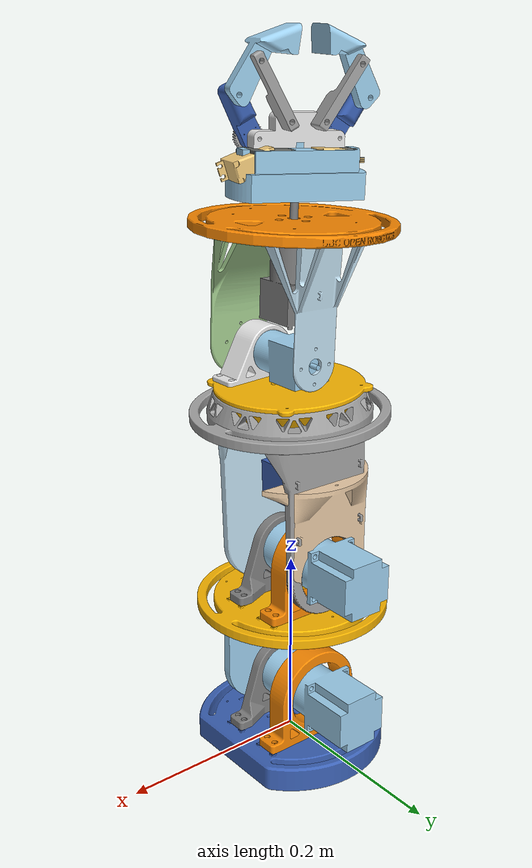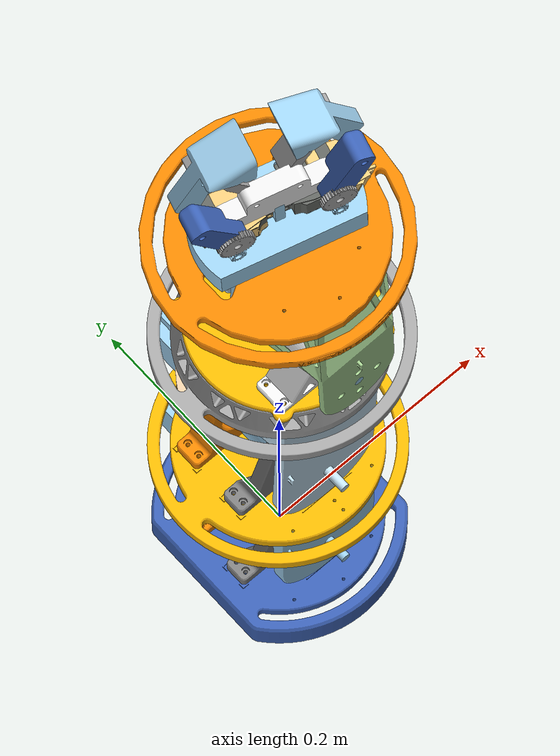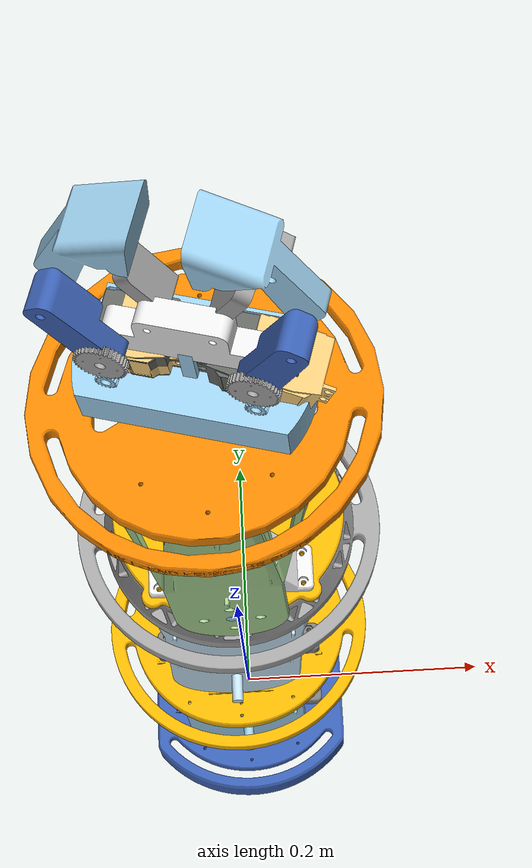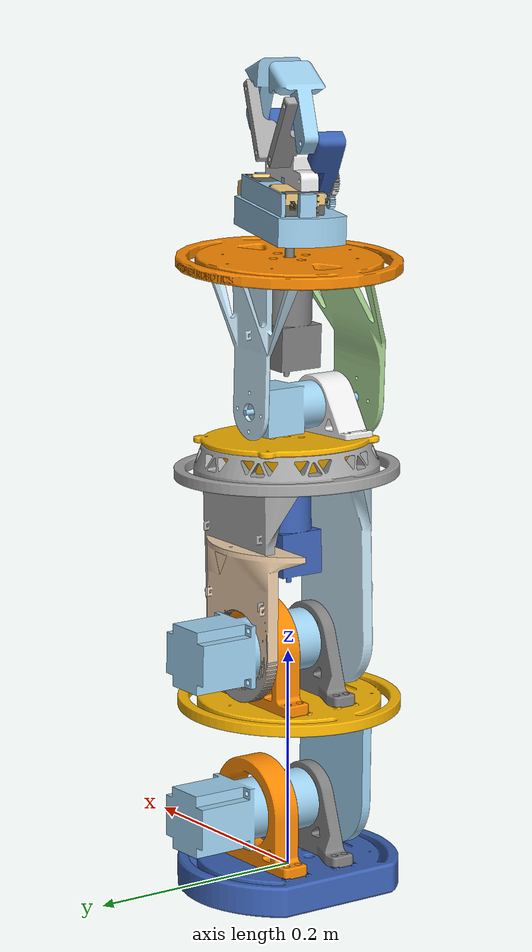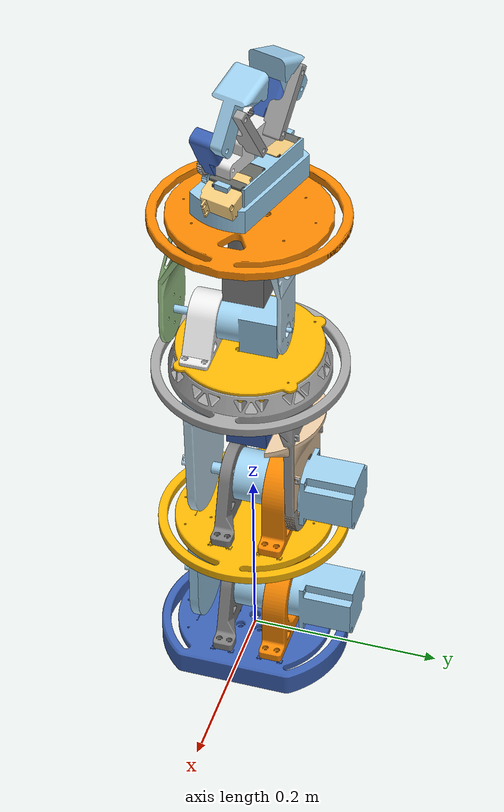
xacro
<?xml version="1.0" ?>
<robot xmlns:xacro="http://www.ros.org/wiki/xacro" name="robot">

    <!-- # include statements, much like import statements -->
    <xacro:include filename="$(find ob1_arm_description)/urdf/ob1_arm.xacro"/>
    <xacro:include filename="$(find ob1_arm_description)/urdf/gripper.xacro"/>

    <xacro:property name="prefix" value="ob1_arm" />

    <!-- arm and gripper urdfs -->
    <xacro:arm prefix="${prefix}"/>
    <xacro:gripper prefix="${prefix}"/>

    <!-- arm - gripper joint -->
    <joint name="${prefix}_forearm_gripper_joint" type="revolute">
        <origin xyz="-2.46331e-16 -0.155 0.08285" rpy="-1.5708 0.278795 3.7292e-15" />
        <parent link="${prefix}_forearm_link" />
        <child link="${prefix}_gripper_base_link" />
        <axis xyz="0 0 1"/>
        <limit effort="1" velocity="20" lower="-3.14" upper="3.14"/>
        <joint_properties friction="0.0"/>
        <dynamics D="1" K="7000" mu_coulomb="0" mu_viscous="16" damping="0.003" friction="0.0"/>
    </joint>

    <!-- connect the arm to world with fixed joint -->

    <link name="world"/>
    <joint name="base" type="fixed">
        <parent link="world" />
        <child link="${prefix}_base_link" />
    </joint>

</robot>

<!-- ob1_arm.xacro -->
<robot xmlns:xacro="http://www.ros.org/wiki/xacro" name="robot">
    <xacro:macro name="arm" params="prefix">
        <link name="${prefix}_base_link">
        <visual>
        <origin xyz="3.31402e-16 -0.0195 0.06" rpy="-1.5708 1.21431e-16 3.90606e-18" />
        <geometry>
        <mesh filename="package://ob1_arm_description/meshes/shoulder_y_motor.stl"/>
        </geometry>
        <material name="shoulder_y_motor_material">
        <color rgba="0.615686 0.811765 0.929412 1.0"/>
        </material>
        </visual>
        <collision>
        <origin xyz="3.31402e-16 -0.0195 0.06" rpy="-1.5708 1.21431e-16 3.90606e-18" />
        <geometry>
        <mesh filename="package://ob1_arm_description/meshes/shoulder_y_motor.stl"/>
        </geometry>
        <material name="shoulder_y_motor_material">
        <color rgba="0.615686 0.811765 0.929412 1.0"/>
        </material>
        </collision>
        <visual>
        <origin xyz="1.33481e-16 -0.0195 0.06" rpy="-1.5708 1.2013e-16 2.92997e-21" />
        <geometry>
        <mesh filename="package://ob1_arm_description/meshes/shoulder_plate.stl"/>
        </geometry>
        <material name="shoulder_plate_material">
        <color rgba="0.231373 0.380392 0.705882 1.0"/>
        </material>
        </visual>
        <collision>
        <origin xyz="1.33481e-16 -0.0195 0.06" rpy="-1.5708 1.2013e-16 2.92997e-21" />
        <geometry>
        <mesh filename="package://ob1_arm_description/meshes/shoulder_plate.stl"/>
        </geometry>
        <material name="shoulder_plate_material">
        <color rgba="0.231373 0.380392 0.705882 1.0"/>
        </material>
        </collision>
        <visual>
        <origin xyz="3.46418e-16 -0.0195 0.06" rpy="-1.5708 1.20997e-16 7.25353e-18" />
        <geometry>
        <mesh filename="package://ob1_arm_description/meshes/motor_front_support_-_shoulder.stl"/>
        </geometry>
        <material name="motor_front_support_-_shoulder_material">
        <color rgba="0.498039 0.498039 0.498039 1.0"/>
        </material>
        </visual>
        <collision>
        <origin xyz="3.46418e-16 -0.0195 0.06" rpy="-1.5708 1.20997e-16 7.25353e-18" />
        <geometry>
        <mesh filename="package://ob1_arm_description/meshes/motor_front_support_-_shoulder.stl"/>
        </geometry>
        <material name="motor_front_support_-_shoulder_material">
        <color rgba="0.498039 0.498039 0.498039 1.0"/>
        </material>
        </collision>
        <visual>
        <origin xyz="-6.34937e-17 -0.0195 0.06" rpy="-1.5708 1.2013e-16 2.92997e-21" />
        <geometry>
        <mesh filename="package://ob1_arm_description/meshes/motor_mid_support_-_shoulder.stl"/>
        </geometry>
        <material name="motor_mid_support_-_shoulder_material">
        <color rgba="0.972549 0.529412 0.00392157 1.0"/>
        </material>
        </visual>
        <collision>
        <origin xyz="-6.34937e-17 -0.0195 0.06" rpy="-1.5708 1.2013e-16 2.92997e-21" />
        <geometry>
        <mesh filename="package://ob1_arm_description/meshes/motor_mid_support_-_shoulder.stl"/>
        </geometry>
        <material name="motor_mid_support_-_shoulder_material">
        <color rgba="0.972549 0.529412 0.00392157 1.0"/>
        </material>
        </collision>
        <inertial>
        <origin xyz="0 0 0" rpy="0 0 0"/>
        <mass value="0" />
        <inertia ixx="0" ixy="0"  ixz="0" iyy="0" iyz="0" izz="0" />
        </inertial>
        </link>

        <link name="${prefix}_shoulder_link">
        <visual>
        <origin xyz="-2.59124e-17 0.15 0.067" rpy="3.14159 -2.02376e-31 3.10097e-18" />
        <geometry>
        <mesh filename="package://ob1_arm_description/meshes/shoulder_linkage_-_motor.stl"/>
        </geometry>
        <material name="shoulder_linkage_-_motor_material">
        <color rgba="0.921569 0.8 0.654902 1.0"/>
        </material>
        </visual>
        <collision>
        <origin xyz="-2.59124e-17 0.15 0.067" rpy="3.14159 -2.02376e-31 3.10097e-18" />
        <geometry>
        <mesh filename="package://ob1_arm_description/meshes/shoulder_linkage_-_motor.stl"/>
        </geometry>
        <material name="shoulder_linkage_-_motor_material">
        <color rgba="0.921569 0.8 0.654902 1.0"/>
        </material>
        </collision>
        <visual>
        <origin xyz="8.79071e-16 6.245e-16 0.067" rpy="-3.14159 6.26309e-30 3.30936e-16" />
        <geometry>
        <mesh filename="package://ob1_arm_description/meshes/bicep_y_motor.stl"/>
        </geometry>
        <material name="bicep_y_motor_material">
        <color rgba="0.615686 0.811765 0.929412 1.0"/>
        </material>
        </visual>
        <collision>
        <origin xyz="8.79071e-16 6.245e-16 0.067" rpy="-3.14159 6.26309e-30 3.30936e-16" />
        <geometry>
        <mesh filename="package://ob1_arm_description/meshes/bicep_y_motor.stl"/>
        </geometry>
        <material name="bicep_y_motor_material">
        <color rgba="0.615686 0.811765 0.929412 1.0"/>
        </material>
        </collision>
        <visual>
        <origin xyz="1.03715e-15 1.04083e-15 0.067" rpy="-3.14159 1.39936e-30 -2.98503e-17" />
        <geometry>
        <mesh filename="package://ob1_arm_description/meshes/motor_front_support_-_bicep.stl"/>
        </geometry>
        <material name="motor_front_support_-_bicep_material">
        <color rgba="0.498039 0.498039 0.498039 1.0"/>
        </material>
        </visual>
        <collision>
        <origin xyz="1.03715e-15 1.04083e-15 0.067" rpy="-3.14159 1.39936e-30 -2.98503e-17" />
        <geometry>
        <mesh filename="package://ob1_arm_description/meshes/motor_front_support_-_bicep.stl"/>
        </geometry>
        <material name="motor_front_support_-_bicep_material">
        <color rgba="0.498039 0.498039 0.498039 1.0"/>
        </material>
        </collision>
        <visual>
        <origin xyz="1.05677e-15 1.06859e-15 0.067" rpy="-3.14159 1.84829e-30 -7.32146e-17" />
        <geometry>
        <mesh filename="package://ob1_arm_description/meshes/bicep_plate_-_real.stl"/>
        </geometry>
        <material name="bicep_plate_-_real_material">
        <color rgba="0.980392 0.713725 0.00392157 1.0"/>
        </material>
        </visual>
        <collision>
        <origin xyz="1.05677e-15 1.06859e-15 0.067" rpy="-3.14159 1.84829e-30 -7.32146e-17" />
        <geometry>
        <mesh filename="package://ob1_arm_description/meshes/bicep_plate_-_real.stl"/>
        </geometry>
        <material name="bicep_plate_-_real_material">
        <color rgba="0.980392 0.713725 0.00392157 1.0"/>
        </material>
        </collision>
        <visual>
        <origin xyz="9.52797e-16 9.57567e-16 0.067" rpy="-3.14159 1.97023e-30 1.36668e-16" />
        <geometry>
        <mesh filename="package://ob1_arm_description/meshes/shoulder_linkage_-_encoder.stl"/>
        </geometry>
        <material name="shoulder_linkage_-_encoder_material">
        <color rgba="0.615686 0.811765 0.929412 1.0"/>
        </material>
        </visual>
        <collision>
        <origin xyz="9.52797e-16 9.57567e-16 0.067" rpy="-3.14159 1.97023e-30 1.36668e-16" />
        <geometry>
        <mesh filename="package://ob1_arm_description/meshes/shoulder_linkage_-_encoder.stl"/>
        </geometry>
        <material name="shoulder_linkage_-_encoder_material">
        <color rgba="0.615686 0.811765 0.929412 1.0"/>
        </material>
        </collision>
        <visual>
        <origin xyz="1.11651e-15 1.05471e-15 0.067" rpy="-3.14159 2.70566e-31 -7.32146e-17" />
        <geometry>
        <mesh filename="package://ob1_arm_description/meshes/motor_mid_support_-_bicep.stl"/>
        </geometry>
        <material name="motor_mid_support_-_bicep_material">
        <color rgba="0.972549 0.529412 0.00392157 1.0"/>
        </material>
        </visual>
        <collision>
        <origin xyz="1.11651e-15 1.05471e-15 0.067" rpy="-3.14159 2.70566e-31 -7.32146e-17" />
        <geometry>
        <mesh filename="package://ob1_arm_description/meshes/motor_mid_support_-_bicep.stl"/>
        </geometry>
        <material name="motor_mid_support_-_bicep_material">
        <color rgba="0.972549 0.529412 0.00392157 1.0"/>
        </material>
        </collision>
        <inertial>
        <origin xyz="0 0 0" rpy="0 0 0"/>
        <mass value="0" />
        <inertia ixx="0" ixy="0"  ixz="0" iyy="0" iyz="0" izz="0" />
        </inertial>
        </link>

        <link name="${prefix}_arm_link">
        <visual>
        <origin xyz="0.00366704 -1.27676e-15 0.0666521" rpy="-3.14159 0.18918 1.80411e-15" />
        <geometry>
        <mesh filename="package://ob1_arm_description/meshes/forearm_z_motor_shaft_collar_-_9604t12_flange-mount_shaft_collar.stl"/>
        </geometry>
        <material name="forearm_z_motor_shaft_collar_-_9604t12_flange-mount_shaft_collar_material">
        <color rgba="0.498039 0.498039 0.498039 1.0"/>
        </material>
        </visual>
        <collision>
        <origin xyz="0.00366704 -1.27676e-15 0.0666521" rpy="-3.14159 0.18918 1.80411e-15" />
        <geometry>
        <mesh filename="package://ob1_arm_description/meshes/forearm_z_motor_shaft_collar_-_9604t12_flange-mount_shaft_collar.stl"/>
        </geometry>
        <material name="forearm_z_motor_shaft_collar_-_9604t12_flange-mount_shaft_collar_material">
        <color rgba="0.498039 0.498039 0.498039 1.0"/>
        </material>
        </collision>
        <visual>
        <origin xyz="-2.13371e-15 -1.38778e-16 0.067" rpy="-3.14159 2.13756e-29 -1.6944e-16" />
        <geometry>
        <mesh filename="package://ob1_arm_description/meshes/bicep_z_motor.stl"/>
        </geometry>
        <material name="bicep_z_motor_material">
        <color rgba="0.231373 0.380392 0.705882 1.0"/>
        </material>
        </visual>
        <collision>
        <origin xyz="-2.13371e-15 -1.38778e-16 0.067" rpy="-3.14159 2.13756e-29 -1.6944e-16" />
        <geometry>
        <mesh filename="package://ob1_arm_description/meshes/bicep_z_motor.stl"/>
        </geometry>
        <material name="bicep_z_motor_material">
        <color rgba="0.231373 0.380392 0.705882 1.0"/>
        </material>
        </collision>
        <visual>
        <origin xyz="-2.12851e-15 8.04912e-16 0.067" rpy="-3.14159 2.13756e-29 -1.6944e-16" />
        <geometry>
        <mesh filename="package://ob1_arm_description/meshes/bicep_linkage_-_encoder.stl"/>
        </geometry>
        <material name="bicep_linkage_-_encoder_material">
        <color rgba="0.768627 0.886275 0.952941 1.0"/>
        </material>
        </visual>
        <collision>
        <origin xyz="-2.12851e-15 8.04912e-16 0.067" rpy="-3.14159 2.13756e-29 -1.6944e-16" />
        <geometry>
        <mesh filename="package://ob1_arm_description/meshes/bicep_linkage_-_encoder.stl"/>
        </geometry>
        <material name="bicep_linkage_-_encoder_material">
        <color rgba="0.768627 0.886275 0.952941 1.0"/>
        </material>
        </collision>
        <visual>
        <origin xyz="1.73472e-18 -2.77556e-17 0.067" rpy="-3.14159 -8.22245e-32 -2.84672e-18" />
        <geometry>
        <mesh filename="package://ob1_arm_description/meshes/bicep_linkage_-_motor.stl"/>
        </geometry>
        <material name="bicep_linkage_-_motor_material">
        <color rgba="0.647059 0.647059 0.647059 1.0"/>
        </material>
        </visual>
        <collision>
        <origin xyz="1.73472e-18 -2.77556e-17 0.067" rpy="-3.14159 -8.22245e-32 -2.84672e-18" />
        <geometry>
        <mesh filename="package://ob1_arm_description/meshes/bicep_linkage_-_motor.stl"/>
        </geometry>
        <material name="bicep_linkage_-_motor_material">
        <color rgba="0.647059 0.647059 0.647059 1.0"/>
        </material>
        </collision>
        <visual>
        <origin xyz="-2.0834e-15 2.02616e-15 0.067" rpy="-3.14159 3.58504e-30 -7.91075e-17" />
        <geometry>
        <mesh filename="package://ob1_arm_description/meshes/forearm_plate.stl"/>
        </geometry>
        <material name="forearm_plate_material">
        <color rgba="0.647059 0.647059 0.647059 1.0"/>
        </material>
        </visual>
        <collision>
        <origin xyz="-2.0834e-15 2.02616e-15 0.067" rpy="-3.14159 3.58504e-30 -7.91075e-17" />
        <geometry>
        <mesh filename="package://ob1_arm_description/meshes/forearm_plate.stl"/>
        </geometry>
        <material name="forearm_plate_material">
        <color rgba="0.647059 0.647059 0.647059 1.0"/>
        </material>
        </collision>
        <inertial>
        <origin xyz="0 0 0" rpy="0 0 0"/>
        <mass value="0" />
        <inertia ixx="0" ixy="0"  ixz="0" iyy="0" iyz="0" izz="0" />
        </inertial>
        </link>

        <link name="${prefix}_elbow_link">
        <visual>
        <origin xyz="-1.14492e-16 0.0195 0.18" rpy="1.5708 2.04915e-16 7.13982e-16" />
        <geometry>
        <mesh filename="package://ob1_arm_description/meshes/forearm_motor_support.stl"/>
        </geometry>
        <material name="forearm_motor_support_material">
        <color rgba="0.917647 0.917647 0.917647 1.0"/>
        </material>
        </visual>
        <collision>
        <origin xyz="-1.14492e-16 0.0195 0.18" rpy="1.5708 2.04915e-16 7.13982e-16" />
        <geometry>
        <mesh filename="package://ob1_arm_description/meshes/forearm_motor_support.stl"/>
        </geometry>
        <material name="forearm_motor_support_material">
        <color rgba="0.917647 0.917647 0.917647 1.0"/>
        </material>
        </collision>
        <visual>
        <origin xyz="-1.56125e-17 0.0195 0.18" rpy="1.5708 4.02585e-18 2.26158e-19" />
        <geometry>
        <mesh filename="package://ob1_arm_description/meshes/forearm_intermediate_plate.stl"/>
        </geometry>
        <material name="forearm_intermediate_plate_material">
        <color rgba="0.980392 0.713725 0.00392157 1.0"/>
        </material>
        </visual>
        <collision>
        <origin xyz="-1.56125e-17 0.0195 0.18" rpy="1.5708 4.02585e-18 2.26158e-19" />
        <geometry>
        <mesh filename="package://ob1_arm_description/meshes/forearm_intermediate_plate.stl"/>
        </geometry>
        <material name="forearm_intermediate_plate_material">
        <color rgba="0.980392 0.713725 0.00392157 1.0"/>
        </material>
        </collision>
        <visual>
        <origin xyz="7.32053e-16 0.05285 -0.03115" rpy="1.5708 1.05794e-15 1.82583e-15" />
        <geometry>
        <mesh filename="package://ob1_arm_description/meshes/part_1.stl"/>
        </geometry>
        <material name="part_1_material">
        <color rgba="0.615686 0.811765 0.929412 1.0"/>
        </material>
        </visual>
        <collision>
        <origin xyz="7.32053e-16 0.05285 -0.03115" rpy="1.5708 1.05794e-15 1.82583e-15" />
        <geometry>
        <mesh filename="package://ob1_arm_description/meshes/part_1.stl"/>
        </geometry>
        <material name="part_1_material">
        <color rgba="0.615686 0.811765 0.929412 1.0"/>
        </material>
        </collision>
        <inertial>
        <origin xyz="0 0 0" rpy="0 0 0"/>
        <mass value="0" />
        <inertia ixx="0" ixy="0"  ixz="0" iyy="0" iyz="0" izz="0" />
        </inertial>
        </link>

        <link name="${prefix}_forearm_link">
        <visual>
        <origin xyz="-1.43635e-15 0.21115 0.06335" rpy="1.44226e-20 3.73615e-17 2.30593e-17" />
        <geometry>
        <mesh filename="package://ob1_arm_description/meshes/end_effector_plate.stl"/>
        </geometry>
        <material name="end_effector_plate_material">
        <color rgba="0.972549 0.529412 0.00392157 1.0"/>
        </material>
        </visual>
        <collision>
        <origin xyz="-1.43635e-15 0.21115 0.06335" rpy="1.44226e-20 3.73615e-17 2.30593e-17" />
        <geometry>
        <mesh filename="package://ob1_arm_description/meshes/end_effector_plate.stl"/>
        </geometry>
        <material name="end_effector_plate_material">
        <color rgba="0.972549 0.529412 0.00392157 1.0"/>
        </material>
        </collision>
        <visual>
        <origin xyz="1.5786e-15 0.21115 0.06335" rpy="-1.61808e-19 9.63599e-17 2.17225e-16" />
        <geometry>
        <mesh filename="package://ob1_arm_description/meshes/forearm_linkage_-_encoder.stl"/>
        </geometry>
        <material name="forearm_linkage_-_encoder_material">
        <color rgba="0.768627 0.886275 0.952941 1.0"/>
        </material>
        </visual>
        <collision>
        <origin xyz="1.5786e-15 0.21115 0.06335" rpy="-1.61808e-19 9.63599e-17 2.17225e-16" />
        <geometry>
        <mesh filename="package://ob1_arm_description/meshes/forearm_linkage_-_encoder.stl"/>
        </geometry>
        <material name="forearm_linkage_-_encoder_material">
        <color rgba="0.768627 0.886275 0.952941 1.0"/>
        </material>
        </collision>
        <visual>
        <origin xyz="-1.04083e-17 0.21115 0.06335" rpy="2.64017e-20 6.23759e-20 2.25943e-18" />
        <geometry>
        <mesh filename="package://ob1_arm_description/meshes/forearm_linkage_-_motor.stl"/>
        </geometry>
        <material name="forearm_linkage_-_motor_material">
        <color rgba="0.654902 0.823529 0.576471 1.0"/>
        </material>
        </visual>
        <collision>
        <origin xyz="-1.04083e-17 0.21115 0.06335" rpy="2.64017e-20 6.23759e-20 2.25943e-18" />
        <geometry>
        <mesh filename="package://ob1_arm_description/meshes/forearm_linkage_-_motor.stl"/>
        </geometry>
        <material name="forearm_linkage_-_motor_material">
        <color rgba="0.654902 0.823529 0.576471 1.0"/>
        </material>
        </collision>
        <visual>
        <origin xyz="4.17721e-15 0.21115 0.06335" rpy="-2.34386e-19 3.24406e-16 6.50284e-17" />
        <geometry>
        <mesh filename="package://ob1_arm_description/meshes/wrist_z_motor.stl"/>
        </geometry>
        <material name="wrist_z_motor_material">
        <color rgba="0.498039 0.498039 0.498039 1.0"/>
        </material>
        </visual>
        <collision>
        <origin xyz="4.17721e-15 0.21115 0.06335" rpy="-2.34386e-19 3.24406e-16 6.50284e-17" />
        <geometry>
        <mesh filename="package://ob1_arm_description/meshes/wrist_z_motor.stl"/>
        </geometry>
        <material name="wrist_z_motor_material">
        <color rgba="0.498039 0.498039 0.498039 1.0"/>
        </material>
        </collision>
        <inertial>
        <origin xyz="0 0 0" rpy="0 0 0"/>
        <mass value="0" />
        <inertia ixx="0" ixy="0"  ixz="0" iyy="0" iyz="0" izz="0" />
        </inertial>
        </link>

        <joint name="${prefix}_elbow_forearm_joint" type="revolute">
        <origin xyz="7.71952e-16 0.08285 -0.03115" rpy="1.5708 0.0729385 1.34977e-15" />
        <parent link="${prefix}_elbow_link" />
        <child link="${prefix}_forearm_link" />
        <axis xyz="0 0 1"/>
        <limit effort="1" velocity="20" lower="-1.5787" upper="1.5787"/>
        <joint_properties friction="0.0"/>
        <dynamics D="1" K="7000" mu_coulomb="0" mu_viscous="16" damping="0.003" friction="0.0"/>
        </joint>

        <joint name="${prefix}_arm_elbow_joint" type="revolute">
        <origin xyz="-1.33227e-15 0.18 0.0475" rpy="1.5708 0.00373826 -5.38613e-15" />
        <parent link="${prefix}_arm_link" />
        <child link="${prefix}_elbow_link" />
        <axis xyz="0 0 1"/>
        <limit effort="1" velocity="20" lower="-3.14" upper="3.14"/>
        <joint_properties friction="0.0"/>
        <dynamics D="1" K="7000" mu_coulomb="0" mu_viscous="16" damping="0.003" friction="0.0"/>
        </joint>

        <joint name="${prefix}_shoulder_arm_joint" type="revolute">
        <origin xyz="2.90241e-16 0.15 -7.97973e-16" rpy="8.20328e-16 -1.37552e-14 -0.046259" />
        <parent link="${prefix}_shoulder_link" />
        <child link="${prefix}_arm_link" />
        <axis xyz="0 0 1"/>
        <limit effort="1" velocity="20" lower="-1.5787" upper="1.5787"/>
        <joint_properties friction="0.0"/>
        <dynamics D="1" K="7000" mu_coulomb="0" mu_viscous="16" damping="0.003" friction="0.0"/>
        </joint>

        <joint name="${prefix}_base_shoulder_joint" type="revolute">
        <origin xyz="8.1532e-17 0.0475 0.06" rpy="1.5708 -0.0134839 4.87562e-15" />
        <parent link="${prefix}_base_link" />
        <child link="${prefix}_shoulder_link" />
        <axis xyz="0 0 1"/>
        <limit effort="1" velocity="20" lower="-1.5787" upper="1.5787"/>
        <joint_properties friction="0.0"/>
        <dynamics D="1" K="7000" mu_coulomb="0" mu_viscous="16" damping="0.003" friction="0.0"/>
        </joint>
    </xacro:macro>
</robot>

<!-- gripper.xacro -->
<robot xmlns:xacro="http://www.ros.org/wiki/xacro">
    <xacro:macro name="gripper" params="prefix">
        <link name="${prefix}_gripper_base_link">
        <visual>
        <origin xyz="-0.04015 0.0144875 -0.0347028" rpy="-1.31921 -1.52407 -0.251324" />
        <geometry>
        <mesh filename="package://ob1_arm_description/meshes/hk15328d_v5.stl"/>
        </geometry>
        <material name="hk15328d_v5_material">
        <color rgba="0.952941 0.796078 0.486275 1.0"/>
        </material>
        </visual>
        <collision>
        <origin xyz="-0.04015 0.0144875 -0.0347028" rpy="-1.31921 -1.52407 -0.251324" />
        <geometry>
        <mesh filename="package://ob1_arm_description/meshes/hk15328d_v5.stl"/>
        </geometry>
        <material name="hk15328d_v5_material">
        <color rgba="0.952941 0.796078 0.486275 1.0"/>
        </material>
        </collision>
        <visual>
        <origin xyz="-0.04015 0.0239869 -0.0345924" rpy="0.251587 -1.52407 -0.251324" />
        <geometry>
        <mesh filename="package://ob1_arm_description/meshes/spur_gear_(16_teeth).stl"/>
        </geometry>
        <material name="spur_gear_(16_teeth)_material">
        <color rgba="0.615686 0.811765 0.929412 1.0"/>
        </material>
        </visual>
        <collision>
        <origin xyz="-0.04015 0.0239869 -0.0345924" rpy="0.251587 -1.52407 -0.251324" />
        <geometry>
        <mesh filename="package://ob1_arm_description/meshes/spur_gear_(16_teeth).stl"/>
        </geometry>
        <material name="spur_gear_(16_teeth)_material">
        <color rgba="0.615686 0.811765 0.929412 1.0"/>
        </material>
        </collision>
        <visual>
        <origin xyz="-0.04 0.019 -0.0535151" rpy="-3.14159 -0.174533 4.4254e-17" />
        <geometry>
        <mesh filename="package://ob1_arm_description/meshes/spur_gear_(36_teeth).stl"/>
        </geometry>
        <material name="spur_gear_(36_teeth)_material">
        <color rgba="0.647059 0.647059 0.647059 1.0"/>
        </material>
        </visual>
        <collision>
        <origin xyz="-0.04 0.019 -0.0535151" rpy="-3.14159 -0.174533 4.4254e-17" />
        <geometry>
        <mesh filename="package://ob1_arm_description/meshes/spur_gear_(36_teeth).stl"/>
        </geometry>
        <material name="spur_gear_(36_teeth)_material">
        <color rgba="0.647059 0.647059 0.647059 1.0"/>
        </material>
        </collision>
        <visual>
        <origin xyz="6.93889e-18 -8.67362e-19 -1.77636e-15" rpy="-3.14159 1.01857e-14 5.54818e-17" />
        <geometry>
        <mesh filename="package://ob1_arm_description/meshes/part_2_gripper.stl"/>
        </geometry>
        <material name="part_2_gripper_material">
        <color rgba="0.917647 0.917647 0.917647 1.0"/>
        </material>
        </visual>
        <collision>
        <origin xyz="6.93889e-18 -8.67362e-19 -1.77636e-15" rpy="-3.14159 1.01857e-14 5.54818e-17" />
        <geometry>
        <mesh filename="package://ob1_arm_description/meshes/part_2_gripper.stl"/>
        </geometry>
        <material name="part_2_gripper_material">
        <color rgba="0.917647 0.917647 0.917647 1.0"/>
        </material>
        </collision>
        <visual>
        <origin xyz="0.04015 0.0239869 -0.0345924" rpy="3.10536 -1.244 -3.10728" />
        <geometry>
        <mesh filename="package://ob1_arm_description/meshes/spur_gear_(16_teeth).stl"/>
        </geometry>
        <material name="spur_gear_(16_teeth)_material">
        <color rgba="0.615686 0.811765 0.929412 1.0"/>
        </material>
        </visual>
        <collision>
        <origin xyz="0.04015 0.0239869 -0.0345924" rpy="3.10536 -1.244 -3.10728" />
        <geometry>
        <mesh filename="package://ob1_arm_description/meshes/spur_gear_(16_teeth).stl"/>
        </geometry>
        <material name="spur_gear_(16_teeth)_material">
        <color rgba="0.615686 0.811765 0.929412 1.0"/>
        </material>
        </collision>
        <visual>
        <origin xyz="0.04 0.024 -0.0535151" rpy="1.10827e-14 1.0192e-14 1.02561e-16" />
        <geometry>
        <mesh filename="package://ob1_arm_description/meshes/spur_gear_(36_teeth).stl"/>
        </geometry>
        <material name="spur_gear_(36_teeth)_material">
        <color rgba="0.647059 0.647059 0.647059 1.0"/>
        </material>
        </visual>
        <collision>
        <origin xyz="0.04 0.024 -0.0535151" rpy="1.10827e-14 1.0192e-14 1.02561e-16" />
        <geometry>
        <mesh filename="package://ob1_arm_description/meshes/spur_gear_(36_teeth).stl"/>
        </geometry>
        <material name="spur_gear_(36_teeth)_material">
        <color rgba="0.647059 0.647059 0.647059 1.0"/>
        </material>
        </collision>
        <visual>
        <origin xyz="0.04015 0.0144875 -0.0347028" rpy="1.53457 -1.244 -3.10728" />
        <geometry>
        <mesh filename="package://ob1_arm_description/meshes/hk15328d_v5.stl"/>
        </geometry>
        <material name="hk15328d_v5_material">
        <color rgba="0.952941 0.796078 0.486275 1.0"/>
        </material>
        </visual>
        <collision>
        <origin xyz="0.04015 0.0144875 -0.0347028" rpy="1.53457 -1.244 -3.10728" />
        <geometry>
        <mesh filename="package://ob1_arm_description/meshes/hk15328d_v5.stl"/>
        </geometry>
        <material name="hk15328d_v5_material">
        <color rgba="0.952941 0.796078 0.486275 1.0"/>
        </material>
        </collision>
        <visual>
        <origin xyz="0.04015 0.0144875 -0.0347028" rpy="8.11517e-13 1.55917 1.5708" />
        <geometry>
        <mesh filename="package://ob1_arm_description/meshes/hk15328d_v5.stl"/>
        </geometry>
        <material name="hk15328d_v5_material">
        <color rgba="0.392157 0.403922 0.384314 1.0"/>
        </material>
        </visual>
        <collision>
        <origin xyz="0.04015 0.0144875 -0.0347028" rpy="8.11517e-13 1.55917 1.5708" />
        <geometry>
        <mesh filename="package://ob1_arm_description/meshes/hk15328d_v5.stl"/>
        </geometry>
        <material name="hk15328d_v5_material">
        <color rgba="0.392157 0.403922 0.384314 1.0"/>
        </material>
        </collision>
        <visual>
        <origin xyz="-0.04015 0.0144875 -0.0347028" rpy="-1.23792e-12 -1.55917 -1.5708" />
        <geometry>
        <mesh filename="package://ob1_arm_description/meshes/hk15328d_v5.stl"/>
        </geometry>
        <material name="hk15328d_v5_material">
        <color rgba="0.392157 0.403922 0.384314 1.0"/>
        </material>
        </visual>
        <collision>
        <origin xyz="-0.04015 0.0144875 -0.0347028" rpy="-1.23792e-12 -1.55917 -1.5708" />
        <geometry>
        <mesh filename="package://ob1_arm_description/meshes/hk15328d_v5.stl"/>
        </geometry>
        <material name="hk15328d_v5_material">
        <color rgba="0.392157 0.403922 0.384314 1.0"/>
        </material>
        </collision>
        <visual>
        <origin xyz="3.46945e-18 -8.67362e-19 -1.11022e-16" rpy="3.14159 -6.62591e-19 -1.44439e-17" />
        <geometry>
        <mesh filename="package://ob1_arm_description/meshes/part_1_gripper.stl"/>
        </geometry>
        <material name="part_1_gripper_material">
        <color rgba="0.615686 0.811765 0.929412 1.0"/>
        </material>
        </visual>
        <collision>
        <origin xyz="3.46945e-18 -8.67362e-19 -1.11022e-16" rpy="3.14159 -6.62591e-19 -1.44439e-17" />
        <geometry>
        <mesh filename="package://ob1_arm_description/meshes/part_1_gripper.stl"/>
        </geometry>
        <material name="part_1_gripper_material">
        <color rgba="0.615686 0.811765 0.929412 1.0"/>
        </material>
        </collision>
        <inertial>
        <origin xyz="0 0 0" rpy="0 0 0"/>
        <mass value="0" />
        <inertia ixx="0" ixy="0"  ixz="0" iyy="0" iyz="0" izz="0" />
        </inertial>
        </link>

        <link name="${prefix}_rclaw_link">
        <visual>
        <origin xyz="-0.0203388 -0.0331036 0.037" rpy="1.5708 -1.32447e-15 0.332485" />
        <geometry>
        <mesh filename="package://ob1_arm_description/meshes/part_1_mirror_gripper_claw.stl"/>
        </geometry>
        <material name="part_1_mirror_gripper_claw_material">
        <color rgba="0.615686 0.811765 0.929412 1.0"/>
        </material>
        </visual>
        <collision>
        <origin xyz="-0.0203388 -0.0331036 0.037" rpy="1.5708 -1.32447e-15 0.332485" />
        <geometry>
        <mesh filename="package://ob1_arm_description/meshes/part_1_mirror_gripper_claw.stl"/>
        </geometry>
        <material name="part_1_mirror_gripper_claw_material">
        <color rgba="0.615686 0.811765 0.929412 1.0"/>
        </material>
        </collision>
        <visual>
        <origin xyz="0.0106217 -0.0304372 0.012" rpy="1.5708 2.79276e-18 -8.04372e-17" />
        <geometry>
        <mesh filename="package://ob1_arm_description/meshes/part_3_mirror_gripper_claw.stl"/>
        </geometry>
        <material name="part_3_mirror_gripper_claw_material">
        <color rgba="0.231373 0.380392 0.705882 1.0"/>
        </material>
        </visual>
        <collision>
        <origin xyz="0.0106217 -0.0304372 0.012" rpy="1.5708 2.79276e-18 -8.04372e-17" />
        <geometry>
        <mesh filename="package://ob1_arm_description/meshes/part_3_mirror_gripper_claw.stl"/>
        </geometry>
        <material name="part_3_mirror_gripper_claw_material">
        <color rgba="0.231373 0.380392 0.705882 1.0"/>
        </material>
        </collision>
        <visual>
        <origin xyz="0.0114671 -0.0521066 0.013" rpy="-1.5708 -5.46252e-16 -1.22447" />
        <geometry>
        <mesh filename="package://ob1_arm_description/meshes/part_2_mirror_gripper_claw.stl"/>
        </geometry>
        <material name="part_2_mirror_gripper_claw_material">
        <color rgba="0.647059 0.647059 0.647059 1.0"/>
        </material>
        </visual>
        <collision>
        <origin xyz="0.0114671 -0.0521066 0.013" rpy="-1.5708 -5.46252e-16 -1.22447" />
        <geometry>
        <mesh filename="package://ob1_arm_description/meshes/part_2_mirror_gripper_claw.stl"/>
        </geometry>
        <material name="part_2_mirror_gripper_claw_material">
        <color rgba="0.647059 0.647059 0.647059 1.0"/>
        </material>
        </collision>
        <inertial>
        <origin xyz="0 0 0" rpy="0 0 0"/>
        <mass value="0" />
        <inertia ixx="0" ixy="0"  ixz="0" iyy="0" iyz="0" izz="0" />
        </inertial>
        </link>

        <link name="${prefix}_lclaw_link">
        <visual>
        <origin xyz="-0.00826547 -0.051955 0.013" rpy="-1.5708 -3.1668e-17 1.26775" />
        <geometry>
        <mesh filename="package://ob1_arm_description/meshes/part_2_gripper_claw.stl"/>
        </geometry>
        <material name="part_2_gripper_claw_material">
        <color rgba="0.647059 0.647059 0.647059 1.0"/>
        </material>
        </visual>
        <collision>
        <origin xyz="-0.00826547 -0.051955 0.013" rpy="-1.5708 -3.1668e-17 1.26775" />
        <geometry>
        <mesh filename="package://ob1_arm_description/meshes/part_2_gripper_claw.stl"/>
        </geometry>
        <material name="part_2_gripper_claw_material">
        <color rgba="0.647059 0.647059 0.647059 1.0"/>
        </material>
        </collision>
        <visual>
        <origin xyz="-0.0106217 -0.0304372 0.012" rpy="1.5708 -6.24126e-18 1.52187e-17" />
        <geometry>
        <mesh filename="package://ob1_arm_description/meshes/part_3_gripper_claw.stl"/>
        </geometry>
        <material name="part_3_gripper_claw_material">
        <color rgba="0.231373 0.380392 0.705882 1.0"/>
        </material>
        </visual>
        <collision>
        <origin xyz="-0.0106217 -0.0304372 0.012" rpy="1.5708 -6.24126e-18 1.52187e-17" />
        <geometry>
        <mesh filename="package://ob1_arm_description/meshes/part_3_gripper_claw.stl"/>
        </geometry>
        <material name="part_3_gripper_claw_material">
        <color rgba="0.231373 0.380392 0.705882 1.0"/>
        </material>
        </collision>
        <visual>
        <origin xyz="0.022895 -0.0320261 0.037" rpy="1.5708 -8.52418e-17 -0.296946" />
        <geometry>
        <mesh filename="package://ob1_arm_description/meshes/part_1_gripper_claw.stl"/>
        </geometry>
        <material name="part_1_gripper_claw_material">
        <color rgba="0.615686 0.811765 0.929412 1.0"/>
        </material>
        </visual>
        <collision>
        <origin xyz="0.022895 -0.0320261 0.037" rpy="1.5708 -8.52418e-17 -0.296946" />
        <geometry>
        <mesh filename="package://ob1_arm_description/meshes/part_1_gripper_claw.stl"/>
        </geometry>
        <material name="part_1_gripper_claw_material">
        <color rgba="0.615686 0.811765 0.929412 1.0"/>
        </material>
        </collision>
        <inertial>
        <origin xyz="0 0 0" rpy="0 0 0"/>
        <mass value="0" />
        <inertia ixx="0" ixy="0"  ixz="0" iyy="0" iyz="0" izz="0" />eef
        </inertial>
        </link>

        <joint name="${prefix}_gripper_lclaw_joint" type="revolute">
        <origin xyz="-0.04 0.008 -0.0535151" rpy="1.5708 -0.367452 -8.36952e-16" />
        <parent link="${prefix}_gripper_base_link" />
        <child link="${prefix}_lclaw_link" />
        <axis xyz="0 0 1"/>
        <limit effort="1" velocity="20" lower="-3.14" upper="3.14"/>
        <joint_properties friction="0.0"/>
        <dynamics D="1" K="7000" mu_coulomb="0" mu_viscous="16" damping="0.003" friction="0.0"/>
        </joint>

        <joint name="${prefix}_gripper_rclaw_joint" type="revolute">
        <origin xyz="0.04 0.008 -0.0535151" rpy="1.5708 0.450222 1.06462e-15" />
        <parent link="${prefix}_gripper_base_link" />
        <child link="${prefix}_rclaw_link" />
        <axis xyz="0 0 1"/>
        <limit effort="1" velocity="20" lower="-3.14" upper="3.14"/>
        <joint_properties friction="0.0"/>
        <dynamics D="1" K="7000" mu_coulomb="0" mu_viscous="16" damping="0.003" friction="0.0"/>
        </joint>

        <link name="${prefix}_eef_link">
            <inertial>
                <origin xyz="0 0 0" rpy="0 0 0"/>
                <mass value="0" />
                <inertia ixx="0" ixy="0"  ixz="0" iyy="0" iyz="0" izz="0" />
            </inertial>
        </link>
        <joint name="${prefix}_gripper_eef_joint" type="fixed">
            <origin xyz="0 0 -0.11" rpy="0 0 0" />
            <parent link="${prefix}_gripper_base_link" />
            <child link="${prefix}_eef_link" />
        </joint>

    </xacro:macro>
</robot>
